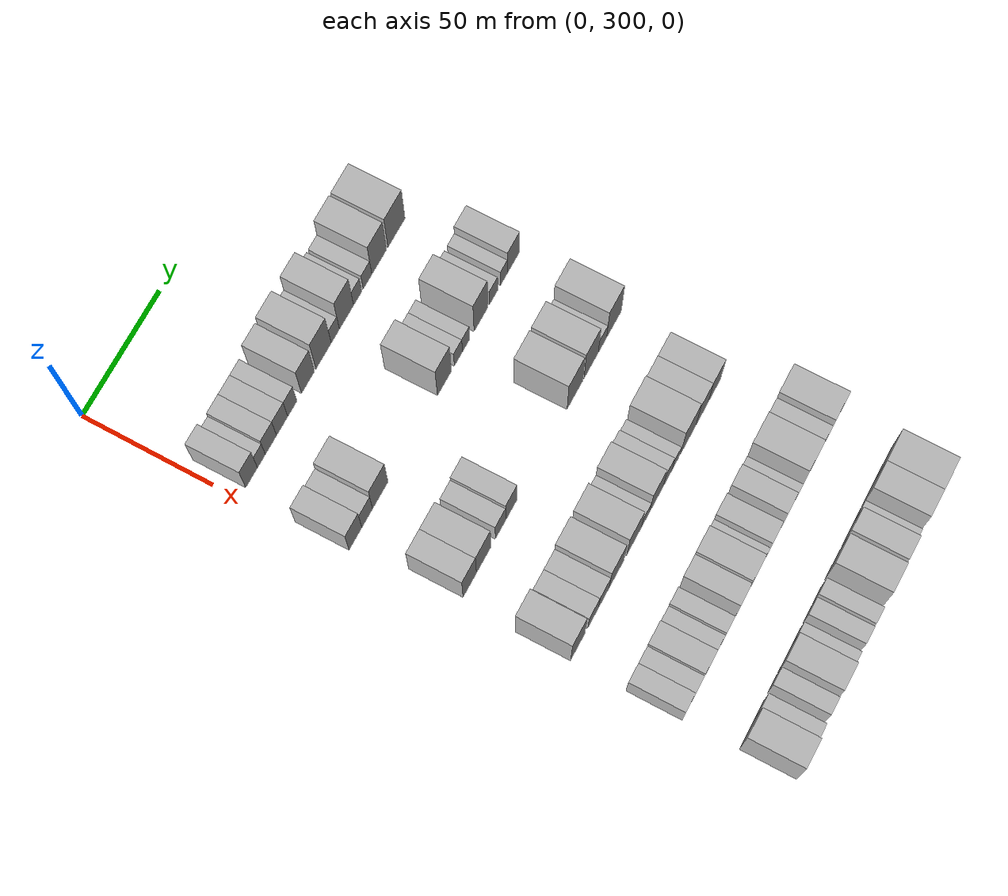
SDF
<sdf version="1.6">
 <world name="default">
  <model name="building_105">
   <static>1</static>
   <pose>50.0000 307.8893 0 0.000000 0.000000 0.000000</pose>
   <link name="link">
    <pose>0 0 9.00 0 0 0</pose>
    <collision name="collision"><geometry><box><size>20.0000 7.6300 18.0000</size></box></geometry></collision>
    <visual name="visual">
     <cast_shadows>0</cast_shadows>
     <geometry><box><size>20.0000 7.6300 18.0000</size></box></geometry>
     <material>
      <script>
       <uri>model://HANNAS_wall/materials/scripts</uri>
       <uri>model://HANNAS_wall/materials/textures</uri>
       <name>vrc/HANNAS_wall</name>
      </script>
     </material>
    </visual>
   </link>
  </model>
  <model name="building_106">
   <static>1</static>
   <pose>50.0000 314.2832 0 0.000000 0.000000 0.000000</pose>
   <link name="link">
    <pose>0 0 6.00 0 0 0</pose>
    <collision name="collision"><geometry><box><size>20.0000 5.1579 12.0000</size></box></geometry></collision>
    <visual name="visual">
     <cast_shadows>0</cast_shadows>
     <geometry><box><size>20.0000 5.1579 12.0000</size></box></geometry>
     <material>
      <script>
       <uri>model://HANNAS_wall/materials/scripts</uri>
       <uri>model://HANNAS_wall/materials/textures</uri>
       <name>vrc/HANNAS_wall</name>
      </script>
     </material>
    </visual>
   </link>
  </model>
  <model name="building_107">
   <static>1</static>
   <pose>50.0000 320.5530 0 0.000000 0.000000 0.000000</pose>
   <link name="link">
    <pose>0 0 7.50 0 0 0</pose>
    <collision name="collision"><geometry><box><size>20.0000 7.3818 15.0000</size></box></geometry></collision>
    <visual name="visual">
     <cast_shadows>0</cast_shadows>
     <geometry><box><size>20.0000 7.3818 15.0000</size></box></geometry>
     <material>
      <script>
       <uri>model://HANNAS_wall/materials/scripts</uri>
       <uri>model://HANNAS_wall/materials/textures</uri>
       <name>vrc/HANNAS_wall</name>
      </script>
     </material>
    </visual>
   </link>
  </model>
  <model name="building_108">
   <static>1</static>
   <pose>50.0000 327.9506 0 0.000000 0.000000 0.000000</pose>
   <link name="link">
    <pose>0 0 7.50 0 0 0</pose>
    <collision name="collision"><geometry><box><size>20.0000 7.4133 15.0000</size></box></geometry></collision>
    <visual name="visual">
     <cast_shadows>0</cast_shadows>
     <geometry><box><size>20.0000 7.4133 15.0000</size></box></geometry>
     <material>
      <script>
       <uri>model://HANNAS_wall/materials/scripts</uri>
       <uri>model://HANNAS_wall/materials/textures</uri>
       <name>vrc/HANNAS_wall</name>
      </script>
     </material>
    </visual>
   </link>
  </model>
  <model name="building_109">
   <static>1</static>
   <pose>50.0000 334.7088 0 0.000000 0.000000 0.000000</pose>
   <link name="link">
    <pose>0 0 7.50 0 0 0</pose>
    <collision name="collision"><geometry><box><size>20.0000 6.1033 15.0000</size></box></geometry></collision>
    <visual name="visual">
     <cast_shadows>0</cast_shadows>
     <geometry><box><size>20.0000 6.1033 15.0000</size></box></geometry>
     <material>
      <script>
       <uri>model://HANNAS_wall/materials/scripts</uri>
       <uri>model://HANNAS_wall/materials/textures</uri>
       <name>vrc/HANNAS_wall</name>
      </script>
     </material>
    </visual>
   </link>
  </model>
  <model name="building_110">
   <static>1</static>
   <pose>50.0000 345.0835 0 0.000000 0.000000 0.000000</pose>
   <link name="link">
    <pose>0 0 10.50 0 0 0</pose>
    <collision name="collision"><geometry><box><size>20.0000 8.6460 21.0000</size></box></geometry></collision>
    <visual name="visual">
     <cast_shadows>0</cast_shadows>
     <geometry><box><size>20.0000 8.6460 21.0000</size></box></geometry>
     <material>
      <script>
       <uri>model://HANNAS_wall/materials/scripts</uri>
       <uri>model://HANNAS_wall/materials/textures</uri>
       <name>vrc/HANNAS_wall</name>
      </script>
     </material>
    </visual>
   </link>
  </model>
  <model name="building_111">
   <static>1</static>
   <pose>50.0000 355.5440 0 0.000000 0.000000 0.000000</pose>
   <link name="link">
    <pose>0 0 12.00 0 0 0</pose>
    <collision name="collision"><geometry><box><size>20.0000 10.2752 24.0000</size></box></geometry></collision>
    <visual name="visual">
     <cast_shadows>0</cast_shadows>
     <geometry><box><size>20.0000 10.2752 24.0000</size></box></geometry>
     <material>
      <script>
       <uri>model://HANNAS_wall/materials/scripts</uri>
       <uri>model://HANNAS_wall/materials/textures</uri>
       <name>vrc/HANNAS_wall</name>
      </script>
     </material>
    </visual>
   </link>
  </model>
  <model name="building_112">
   <static>1</static>
   <pose>50.0000 363.4793 0 0.000000 0.000000 0.000000</pose>
   <link name="link">
    <pose>0 0 6.00 0 0 0</pose>
    <collision name="collision"><geometry><box><size>20.0000 5.5954 12.0000</size></box></geometry></collision>
    <visual name="visual">
     <cast_shadows>0</cast_shadows>
     <geometry><box><size>20.0000 5.5954 12.0000</size></box></geometry>
     <material>
      <script>
       <uri>model://HANNAS_wall/materials/scripts</uri>
       <uri>model://HANNAS_wall/materials/textures</uri>
       <name>vrc/HANNAS_wall</name>
      </script>
     </material>
    </visual>
   </link>
  </model>
  <model name="building_113">
   <static>1</static>
   <pose>50.0000 371.0876 0 0.000000 0.000000 0.000000</pose>
   <link name="link">
    <pose>0 0 12.00 0 0 0</pose>
    <collision name="collision"><geometry><box><size>20.0000 9.6212 24.0000</size></box></geometry></collision>
    <visual name="visual">
     <cast_shadows>0</cast_shadows>
     <geometry><box><size>20.0000 9.6212 24.0000</size></box></geometry>
     <material>
      <script>
       <uri>model://HANNAS_wall/materials/scripts</uri>
       <uri>model://HANNAS_wall/materials/textures</uri>
       <name>vrc/HANNAS_wall</name>
      </script>
     </material>
    </visual>
   </link>
  </model>
  <model name="building_114">
   <static>1</static>
   <pose>50.0000 378.6718 0 0.000000 0.000000 0.000000</pose>
   <link name="link">
    <pose>0 0 6.00 0 0 0</pose>
    <collision name="collision"><geometry><box><size>20.0000 5.5472 12.0000</size></box></geometry></collision>
    <visual name="visual">
     <cast_shadows>0</cast_shadows>
     <geometry><box><size>20.0000 5.5472 12.0000</size></box></geometry>
     <material>
      <script>
       <uri>model://HANNAS_wall/materials/scripts</uri>
       <uri>model://HANNAS_wall/materials/textures</uri>
       <name>vrc/HANNAS_wall</name>
      </script>
     </material>
    </visual>
   </link>
  </model>
  <model name="building_115">
   <static>1</static>
   <pose>50.0000 385.4265 0 0.000000 0.000000 0.000000</pose>
   <link name="link">
    <pose>0 0 6.00 0 0 0</pose>
    <collision name="collision"><geometry><box><size>20.0000 5.9622 12.0000</size></box></geometry></collision>
    <visual name="visual">
     <cast_shadows>0</cast_shadows>
     <geometry><box><size>20.0000 5.9622 12.0000</size></box></geometry>
     <material>
      <script>
       <uri>model://HANNAS_wall/materials/scripts</uri>
       <uri>model://HANNAS_wall/materials/textures</uri>
       <name>vrc/HANNAS_wall</name>
      </script>
     </material>
    </visual>
   </link>
  </model>
  <model name="building_116">
   <static>1</static>
   <pose>50.0000 393.4653 0 0.000000 0.000000 0.000000</pose>
   <link name="link">
    <pose>0 0 12.00 0 0 0</pose>
    <collision name="collision"><geometry><box><size>20.0000 10.1153 24.0000</size></box></geometry></collision>
    <visual name="visual">
     <cast_shadows>0</cast_shadows>
     <geometry><box><size>20.0000 10.1153 24.0000</size></box></geometry>
     <material>
      <script>
       <uri>model://HANNAS_wall/materials/scripts</uri>
       <uri>model://HANNAS_wall/materials/textures</uri>
       <name>vrc/HANNAS_wall</name>
      </script>
     </material>
    </visual>
   </link>
  </model>
  <model name="building_117">
   <static>1</static>
   <pose>50.0000 405.4748 0 0.000000 0.000000 0.000000</pose>
   <link name="link">
    <pose>0 0 12.00 0 0 0</pose>
    <collision name="collision"><geometry><box><size>20.0000 11.9037 24.0000</size></box></geometry></collision>
    <visual name="visual">
     <cast_shadows>0</cast_shadows>
     <geometry><box><size>20.0000 11.9037 24.0000</size></box></geometry>
     <material>
      <script>
       <uri>model://HANNAS_wall/materials/scripts</uri>
       <uri>model://HANNAS_wall/materials/textures</uri>
       <name>vrc/HANNAS_wall</name>
      </script>
     </material>
    </visual>
   </link>
  </model>
  <model name="building_246">
   <static>1</static>
   <pose>90.0000 305.9018 0 0.000000 0.000000 0.000000</pose>
   <link name="link">
    <pose>0 0 9.00 0 0 0</pose>
    <collision name="collision"><geometry><box><size>20.0000 8.4711 18.0000</size></box></geometry></collision>
    <visual name="visual">
     <cast_shadows>0</cast_shadows>
     <geometry><box><size>20.0000 8.4711 18.0000</size></box></geometry>
     <material>
      <script>
       <uri>model://HANNAS_wall/materials/scripts</uri>
       <uri>model://HANNAS_wall/materials/textures</uri>
       <name>vrc/HANNAS_wall</name>
      </script>
     </material>
    </visual>
   </link>
  </model>
  <model name="building_247">
   <static>1</static>
   <pose>90.0000 313.7068 0 0.000000 0.000000 0.000000</pose>
   <link name="link">
    <pose>0 0 7.50 0 0 0</pose>
    <collision name="collision"><geometry><box><size>20.0000 7.1389 15.0000</size></box></geometry></collision>
    <visual name="visual">
     <cast_shadows>0</cast_shadows>
     <geometry><box><size>20.0000 7.1389 15.0000</size></box></geometry>
     <material>
      <script>
       <uri>model://HANNAS_wall/materials/scripts</uri>
       <uri>model://HANNAS_wall/materials/textures</uri>
       <name>vrc/HANNAS_wall</name>
      </script>
     </material>
    </visual>
   </link>
  </model>
  <model name="building_248">
   <static>1</static>
   <pose>90.0000 322.4548 0 0.000000 0.000000 0.000000</pose>
   <link name="link">
    <pose>0 0 10.50 0 0 0</pose>
    <collision name="collision"><geometry><box><size>20.0000 10.3570 21.0000</size></box></geometry></collision>
    <visual name="visual">
     <cast_shadows>0</cast_shadows>
     <geometry><box><size>20.0000 10.3570 21.0000</size></box></geometry>
     <material>
      <script>
       <uri>model://HANNAS_wall/materials/scripts</uri>
       <uri>model://HANNAS_wall/materials/textures</uri>
       <name>vrc/HANNAS_wall</name>
      </script>
     </material>
    </visual>
   </link>
  </model>
  <model name="building_249">
   <static>1</static>
   <pose>90.0000 366.1101 0 0.000000 0.000000 0.000000</pose>
   <link name="link">
    <pose>0 0 12.00 0 0 0</pose>
    <collision name="collision"><geometry><box><size>20.0000 9.6512 24.0000</size></box></geometry></collision>
    <visual name="visual">
     <cast_shadows>0</cast_shadows>
     <geometry><box><size>20.0000 9.6512 24.0000</size></box></geometry>
     <material>
      <script>
       <uri>model://HANNAS_wall/materials/scripts</uri>
       <uri>model://HANNAS_wall/materials/textures</uri>
       <name>vrc/HANNAS_wall</name>
      </script>
     </material>
    </visual>
   </link>
  </model>
  <model name="building_250">
   <static>1</static>
   <pose>90.0000 375.7720 0 0.000000 0.000000 0.000000</pose>
   <link name="link">
    <pose>0 0 6.00 0 0 0</pose>
    <collision name="collision"><geometry><box><size>20.0000 5.6725 12.0000</size></box></geometry></collision>
    <visual name="visual">
     <cast_shadows>0</cast_shadows>
     <geometry><box><size>20.0000 5.6725 12.0000</size></box></geometry>
     <material>
      <script>
       <uri>model://HANNAS_wall/materials/scripts</uri>
       <uri>model://HANNAS_wall/materials/textures</uri>
       <name>vrc/HANNAS_wall</name>
      </script>
     </material>
    </visual>
   </link>
  </model>
  <model name="building_251">
   <static>1</static>
   <pose>90.0000 381.1638 0 0.000000 0.000000 0.000000</pose>
   <link name="link">
    <pose>0 0 6.00 0 0 0</pose>
    <collision name="collision"><geometry><box><size>20.0000 5.1111 12.0000</size></box></geometry></collision>
    <visual name="visual">
     <cast_shadows>0</cast_shadows>
     <geometry><box><size>20.0000 5.1111 12.0000</size></box></geometry>
     <material>
      <script>
       <uri>model://HANNAS_wall/materials/scripts</uri>
       <uri>model://HANNAS_wall/materials/textures</uri>
       <name>vrc/HANNAS_wall</name>
      </script>
     </material>
    </visual>
   </link>
  </model>
  <model name="building_252">
   <static>1</static>
   <pose>90.0000 391.6265 0 0.000000 0.000000 0.000000</pose>
   <link name="link">
    <pose>0 0 12.00 0 0 0</pose>
    <collision name="collision"><geometry><box><size>20.0000 9.8144 24.0000</size></box></geometry></collision>
    <visual name="visual">
     <cast_shadows>0</cast_shadows>
     <geometry><box><size>20.0000 9.8144 24.0000</size></box></geometry>
     <material>
      <script>
       <uri>model://HANNAS_wall/materials/scripts</uri>
       <uri>model://HANNAS_wall/materials/textures</uri>
       <name>vrc/HANNAS_wall</name>
      </script>
     </material>
    </visual>
   </link>
  </model>
  <model name="building_253">
   <static>1</static>
   <pose>90.0000 400.4798 0 0.000000 0.000000 0.000000</pose>
   <link name="link">
    <pose>0 0 6.00 0 0 0</pose>
    <collision name="collision"><geometry><box><size>20.0000 5.8921 12.0000</size></box></geometry></collision>
    <visual name="visual">
     <cast_shadows>0</cast_shadows>
     <geometry><box><size>20.0000 5.8921 12.0000</size></box></geometry>
     <material>
      <script>
       <uri>model://HANNAS_wall/materials/scripts</uri>
       <uri>model://HANNAS_wall/materials/textures</uri>
       <name>vrc/HANNAS_wall</name>
      </script>
     </material>
    </visual>
   </link>
  </model>
  <model name="building_254">
   <static>1</static>
   <pose>90.0000 407.8753 0 0.000000 0.000000 0.000000</pose>
   <link name="link">
    <pose>0 0 6.00 0 0 0</pose>
    <collision name="collision"><geometry><box><size>20.0000 4.8989 12.0000</size></box></geometry></collision>
    <visual name="visual">
     <cast_shadows>0</cast_shadows>
     <geometry><box><size>20.0000 4.8989 12.0000</size></box></geometry>
     <material>
      <script>
       <uri>model://HANNAS_wall/materials/scripts</uri>
       <uri>model://HANNAS_wall/materials/textures</uri>
       <name>vrc/HANNAS_wall</name>
      </script>
     </material>
    </visual>
   </link>
  </model>
  <model name="building_255">
   <static>1</static>
   <pose>90.0000 414.6044 0 0.000000 0.000000 0.000000</pose>
   <link name="link">
    <pose>0 0 9.00 0 0 0</pose>
    <collision name="collision"><geometry><box><size>20.0000 8.5593 18.0000</size></box></geometry></collision>
    <visual name="visual">
     <cast_shadows>0</cast_shadows>
     <geometry><box><size>20.0000 8.5593 18.0000</size></box></geometry>
     <material>
      <script>
       <uri>model://HANNAS_wall/materials/scripts</uri>
       <uri>model://HANNAS_wall/materials/textures</uri>
       <name>vrc/HANNAS_wall</name>
      </script>
     </material>
    </visual>
   </link>
  </model>
  <model name="building_385">
   <static>1</static>
   <pose>130.0000 309.8261 0 0.000000 0.000000 0.000000</pose>
   <link name="link">
    <pose>0 0 10.50 0 0 0</pose>
    <collision name="collision"><geometry><box><size>20.0000 8.9828 21.0000</size></box></geometry></collision>
    <visual name="visual">
     <cast_shadows>0</cast_shadows>
     <geometry><box><size>20.0000 8.9828 21.0000</size></box></geometry>
     <material>
      <script>
       <uri>model://HANNAS_wall/materials/scripts</uri>
       <uri>model://HANNAS_wall/materials/textures</uri>
       <name>vrc/HANNAS_wall</name>
      </script>
     </material>
    </visual>
   </link>
  </model>
  <model name="building_386">
   <static>1</static>
   <pose>130.0000 319.2713 0 0.000000 0.000000 0.000000</pose>
   <link name="link">
    <pose>0 0 10.50 0 0 0</pose>
    <collision name="collision"><geometry><box><size>20.0000 9.9076 21.0000</size></box></geometry></collision>
    <visual name="visual">
     <cast_shadows>0</cast_shadows>
     <geometry><box><size>20.0000 9.9076 21.0000</size></box></geometry>
     <material>
      <script>
       <uri>model://HANNAS_wall/materials/scripts</uri>
       <uri>model://HANNAS_wall/materials/textures</uri>
       <name>vrc/HANNAS_wall</name>
      </script>
     </material>
    </visual>
   </link>
  </model>
  <model name="building_387">
   <static>1</static>
   <pose>130.0000 330.7559 0 0.000000 0.000000 0.000000</pose>
   <link name="link">
    <pose>0 0 7.50 0 0 0</pose>
    <collision name="collision"><geometry><box><size>20.0000 7.0617 15.0000</size></box></geometry></collision>
    <visual name="visual">
     <cast_shadows>0</cast_shadows>
     <geometry><box><size>20.0000 7.0617 15.0000</size></box></geometry>
     <material>
      <script>
       <uri>model://HANNAS_wall/materials/scripts</uri>
       <uri>model://HANNAS_wall/materials/textures</uri>
       <name>vrc/HANNAS_wall</name>
      </script>
     </material>
    </visual>
   </link>
  </model>
  <model name="building_388">
   <static>1</static>
   <pose>130.0000 338.2179 0 0.000000 0.000000 0.000000</pose>
   <link name="link">
    <pose>0 0 9.00 0 0 0</pose>
    <collision name="collision"><geometry><box><size>20.0000 7.8623 18.0000</size></box></geometry></collision>
    <visual name="visual">
     <cast_shadows>0</cast_shadows>
     <geometry><box><size>20.0000 7.8623 18.0000</size></box></geometry>
     <material>
      <script>
       <uri>model://HANNAS_wall/materials/scripts</uri>
       <uri>model://HANNAS_wall/materials/textures</uri>
       <name>vrc/HANNAS_wall</name>
      </script>
     </material>
    </visual>
   </link>
  </model>
  <model name="building_389">
   <static>1</static>
   <pose>130.0000 382.6877 0 0.000000 0.000000 0.000000</pose>
   <link name="link">
    <pose>0 0 12.00 0 0 0</pose>
    <collision name="collision"><geometry><box><size>20.0000 11.0258 24.0000</size></box></geometry></collision>
    <visual name="visual">
     <cast_shadows>0</cast_shadows>
     <geometry><box><size>20.0000 11.0258 24.0000</size></box></geometry>
     <material>
      <script>
       <uri>model://HANNAS_wall/materials/scripts</uri>
       <uri>model://HANNAS_wall/materials/textures</uri>
       <name>vrc/HANNAS_wall</name>
      </script>
     </material>
    </visual>
   </link>
  </model>
  <model name="building_390">
   <static>1</static>
   <pose>130.0000 394.3257 0 0.000000 0.000000 0.000000</pose>
   <link name="link">
    <pose>0 0 12.00 0 0 0</pose>
    <collision name="collision"><geometry><box><size>20.0000 10.2501 24.0000</size></box></geometry></collision>
    <visual name="visual">
     <cast_shadows>0</cast_shadows>
     <geometry><box><size>20.0000 10.2501 24.0000</size></box></geometry>
     <material>
      <script>
       <uri>model://HANNAS_wall/materials/scripts</uri>
       <uri>model://HANNAS_wall/materials/textures</uri>
       <name>vrc/HANNAS_wall</name>
      </script>
     </material>
    </visual>
   </link>
  </model>
  <model name="building_391">
   <static>1</static>
   <pose>130.0000 402.4447 0 0.000000 0.000000 0.000000</pose>
   <link name="link">
    <pose>0 0 6.00 0 0 0</pose>
    <collision name="collision"><geometry><box><size>20.0000 5.9880 12.0000</size></box></geometry></collision>
    <visual name="visual">
     <cast_shadows>0</cast_shadows>
     <geometry><box><size>20.0000 5.9880 12.0000</size></box></geometry>
     <material>
      <script>
       <uri>model://HANNAS_wall/materials/scripts</uri>
       <uri>model://HANNAS_wall/materials/textures</uri>
       <name>vrc/HANNAS_wall</name>
      </script>
     </material>
    </visual>
   </link>
  </model>
  <model name="building_392">
   <static>1</static>
   <pose>130.0000 410.7987 0 0.000000 0.000000 0.000000</pose>
   <link name="link">
    <pose>0 0 12.00 0 0 0</pose>
    <collision name="collision"><geometry><box><size>20.0000 10.7201 24.0000</size></box></geometry></collision>
    <visual name="visual">
     <cast_shadows>0</cast_shadows>
     <geometry><box><size>20.0000 10.7201 24.0000</size></box></geometry>
     <material>
      <script>
       <uri>model://HANNAS_wall/materials/scripts</uri>
       <uri>model://HANNAS_wall/materials/textures</uri>
       <name>vrc/HANNAS_wall</name>
      </script>
     </material>
    </visual>
   </link>
  </model>
  <model name="building_521">
   <static>1</static>
   <pose>170.0000 308.2360 0 0.000000 0.000000 0.000000</pose>
   <link name="link">
    <pose>0 0 12.00 0 0 0</pose>
    <collision name="collision"><geometry><box><size>20.0000 9.8333 24.0000</size></box></geometry></collision>
    <visual name="visual">
     <cast_shadows>0</cast_shadows>
     <geometry><box><size>20.0000 9.8333 24.0000</size></box></geometry>
     <material>
      <script>
       <uri>model://HANNAS_wall/materials/scripts</uri>
       <uri>model://HANNAS_wall/materials/textures</uri>
       <name>vrc/HANNAS_wall</name>
      </script>
     </material>
    </visual>
   </link>
  </model>
  <model name="building_522">
   <static>1</static>
   <pose>170.0000 318.8440 0 0.000000 0.000000 0.000000</pose>
   <link name="link">
    <pose>0 0 7.50 0 0 0</pose>
    <collision name="collision"><geometry><box><size>20.0000 7.3826 15.0000</size></box></geometry></collision>
    <visual name="visual">
     <cast_shadows>0</cast_shadows>
     <geometry><box><size>20.0000 7.3826 15.0000</size></box></geometry>
     <material>
      <script>
       <uri>model://HANNAS_wall/materials/scripts</uri>
       <uri>model://HANNAS_wall/materials/textures</uri>
       <name>vrc/HANNAS_wall</name>
      </script>
     </material>
    </visual>
   </link>
  </model>
  <model name="building_523">
   <static>1</static>
   <pose>170.0000 326.2537 0 0.000000 0.000000 0.000000</pose>
   <link name="link">
    <pose>0 0 7.50 0 0 0</pose>
    <collision name="collision"><geometry><box><size>20.0000 7.4368 15.0000</size></box></geometry></collision>
    <visual name="visual">
     <cast_shadows>0</cast_shadows>
     <geometry><box><size>20.0000 7.4368 15.0000</size></box></geometry>
     <material>
      <script>
       <uri>model://HANNAS_wall/materials/scripts</uri>
       <uri>model://HANNAS_wall/materials/textures</uri>
       <name>vrc/HANNAS_wall</name>
      </script>
     </material>
    </visual>
   </link>
  </model>
  <model name="building_524">
   <static>1</static>
   <pose>170.0000 335.1514 0 0.000000 0.000000 0.000000</pose>
   <link name="link">
    <pose>0 0 10.50 0 0 0</pose>
    <collision name="collision"><geometry><box><size>20.0000 10.3588 21.0000</size></box></geometry></collision>
    <visual name="visual">
     <cast_shadows>0</cast_shadows>
     <geometry><box><size>20.0000 10.3588 21.0000</size></box></geometry>
     <material>
      <script>
       <uri>model://HANNAS_wall/materials/scripts</uri>
       <uri>model://HANNAS_wall/materials/textures</uri>
       <name>vrc/HANNAS_wall</name>
      </script>
     </material>
    </visual>
   </link>
  </model>
  <model name="building_525">
   <static>1</static>
   <pose>170.0000 347.4899 0 0.000000 0.000000 0.000000</pose>
   <link name="link">
    <pose>0 0 10.50 0 0 0</pose>
    <collision name="collision"><geometry><box><size>20.0000 10.3181 21.0000</size></box></geometry></collision>
    <visual name="visual">
     <cast_shadows>0</cast_shadows>
     <geometry><box><size>20.0000 10.3181 21.0000</size></box></geometry>
     <material>
      <script>
       <uri>model://HANNAS_wall/materials/scripts</uri>
       <uri>model://HANNAS_wall/materials/textures</uri>
       <name>vrc/HANNAS_wall</name>
      </script>
     </material>
    </visual>
   </link>
  </model>
  <model name="building_526">
   <static>1</static>
   <pose>170.0000 355.5844 0 0.000000 0.000000 0.000000</pose>
   <link name="link">
    <pose>0 0 6.00 0 0 0</pose>
    <collision name="collision"><geometry><box><size>20.0000 5.8709 12.0000</size></box></geometry></collision>
    <visual name="visual">
     <cast_shadows>0</cast_shadows>
     <geometry><box><size>20.0000 5.8709 12.0000</size></box></geometry>
     <material>
      <script>
       <uri>model://HANNAS_wall/materials/scripts</uri>
       <uri>model://HANNAS_wall/materials/textures</uri>
       <name>vrc/HANNAS_wall</name>
      </script>
     </material>
    </visual>
   </link>
  </model>
  <model name="building_527">
   <static>1</static>
   <pose>170.0000 363.3868 0 0.000000 0.000000 0.000000</pose>
   <link name="link">
    <pose>0 0 10.50 0 0 0</pose>
    <collision name="collision"><geometry><box><size>20.0000 9.7339 21.0000</size></box></geometry></collision>
    <visual name="visual">
     <cast_shadows>0</cast_shadows>
     <geometry><box><size>20.0000 9.7339 21.0000</size></box></geometry>
     <material>
      <script>
       <uri>model://HANNAS_wall/materials/scripts</uri>
       <uri>model://HANNAS_wall/materials/textures</uri>
       <name>vrc/HANNAS_wall</name>
      </script>
     </material>
    </visual>
   </link>
  </model>
  <model name="building_528">
   <static>1</static>
   <pose>170.0000 371.4610 0 0.000000 0.000000 0.000000</pose>
   <link name="link">
    <pose>0 0 7.50 0 0 0</pose>
    <collision name="collision"><geometry><box><size>20.0000 6.4145 15.0000</size></box></geometry></collision>
    <visual name="visual">
     <cast_shadows>0</cast_shadows>
     <geometry><box><size>20.0000 6.4145 15.0000</size></box></geometry>
     <material>
      <script>
       <uri>model://HANNAS_wall/materials/scripts</uri>
       <uri>model://HANNAS_wall/materials/textures</uri>
       <name>vrc/HANNAS_wall</name>
      </script>
     </material>
    </visual>
   </link>
  </model>
  <model name="building_529">
   <static>1</static>
   <pose>170.0000 377.2686 0 0.000000 0.000000 0.000000</pose>
   <link name="link">
    <pose>0 0 6.00 0 0 0</pose>
    <collision name="collision"><geometry><box><size>20.0000 5.2006 12.0000</size></box></geometry></collision>
    <visual name="visual">
     <cast_shadows>0</cast_shadows>
     <geometry><box><size>20.0000 5.2006 12.0000</size></box></geometry>
     <material>
      <script>
       <uri>model://HANNAS_wall/materials/scripts</uri>
       <uri>model://HANNAS_wall/materials/textures</uri>
       <name>vrc/HANNAS_wall</name>
      </script>
     </material>
    </visual>
   </link>
  </model>
  <model name="building_530">
   <static>1</static>
   <pose>170.0000 386.4505 0 0.000000 0.000000 0.000000</pose>
   <link name="link">
    <pose>0 0 12.00 0 0 0</pose>
    <collision name="collision"><geometry><box><size>20.0000 11.1632 24.0000</size></box></geometry></collision>
    <visual name="visual">
     <cast_shadows>0</cast_shadows>
     <geometry><box><size>20.0000 11.1632 24.0000</size></box></geometry>
     <material>
      <script>
       <uri>model://HANNAS_wall/materials/scripts</uri>
       <uri>model://HANNAS_wall/materials/textures</uri>
       <name>vrc/HANNAS_wall</name>
      </script>
     </material>
    </visual>
   </link>
  </model>
  <model name="building_531">
   <static>1</static>
   <pose>170.0000 396.5089 0 0.000000 0.000000 0.000000</pose>
   <link name="link">
    <pose>0 0 10.50 0 0 0</pose>
    <collision name="collision"><geometry><box><size>20.0000 8.9536 21.0000</size></box></geometry></collision>
    <visual name="visual">
     <cast_shadows>0</cast_shadows>
     <geometry><box><size>20.0000 8.9536 21.0000</size></box></geometry>
     <material>
      <script>
       <uri>model://HANNAS_wall/materials/scripts</uri>
       <uri>model://HANNAS_wall/materials/textures</uri>
       <name>vrc/HANNAS_wall</name>
      </script>
     </material>
    </visual>
   </link>
  </model>
  <model name="building_532">
   <static>1</static>
   <pose>170.0000 405.5408 0 0.000000 0.000000 0.000000</pose>
   <link name="link">
    <pose>0 0 10.50 0 0 0</pose>
    <collision name="collision"><geometry><box><size>20.0000 9.1102 21.0000</size></box></geometry></collision>
    <visual name="visual">
     <cast_shadows>0</cast_shadows>
     <geometry><box><size>20.0000 9.1102 21.0000</size></box></geometry>
     <material>
      <script>
       <uri>model://HANNAS_wall/materials/scripts</uri>
       <uri>model://HANNAS_wall/materials/textures</uri>
       <name>vrc/HANNAS_wall</name>
      </script>
     </material>
    </visual>
   </link>
  </model>
  <model name="building_652">
   <static>1</static>
   <pose>210.0000 306.5367 0 0.000000 0.000000 0.000000</pose>
   <link name="link">
    <pose>0 0 7.50 0 0 0</pose>
    <collision name="collision"><geometry><box><size>20.0000 6.9577 15.0000</size></box></geometry></collision>
    <visual name="visual">
     <cast_shadows>0</cast_shadows>
     <geometry><box><size>20.0000 6.9577 15.0000</size></box></geometry>
     <material>
      <script>
       <uri>model://HANNAS_wall/materials/scripts</uri>
       <uri>model://HANNAS_wall/materials/textures</uri>
       <name>vrc/HANNAS_wall</name>
      </script>
     </material>
    </visual>
   </link>
  </model>
  <model name="building_653">
   <static>1</static>
   <pose>210.0000 313.0647 0 0.000000 0.000000 0.000000</pose>
   <link name="link">
    <pose>0 0 7.50 0 0 0</pose>
    <collision name="collision"><geometry><box><size>20.0000 6.0983 15.0000</size></box></geometry></collision>
    <visual name="visual">
     <cast_shadows>0</cast_shadows>
     <geometry><box><size>20.0000 6.0983 15.0000</size></box></geometry>
     <material>
      <script>
       <uri>model://HANNAS_wall/materials/scripts</uri>
       <uri>model://HANNAS_wall/materials/textures</uri>
       <name>vrc/HANNAS_wall</name>
      </script>
     </material>
    </visual>
   </link>
  </model>
  <model name="building_654">
   <static>1</static>
   <pose>210.0000 320.3987 0 0.000000 0.000000 0.000000</pose>
   <link name="link">
    <pose>0 0 9.00 0 0 0</pose>
    <collision name="collision"><geometry><box><size>20.0000 8.5698 18.0000</size></box></geometry></collision>
    <visual name="visual">
     <cast_shadows>0</cast_shadows>
     <geometry><box><size>20.0000 8.5698 18.0000</size></box></geometry>
     <material>
      <script>
       <uri>model://HANNAS_wall/materials/scripts</uri>
       <uri>model://HANNAS_wall/materials/textures</uri>
       <name>vrc/HANNAS_wall</name>
      </script>
     </material>
    </visual>
   </link>
  </model>
  <model name="building_655">
   <static>1</static>
   <pose>210.0000 328.5066 0 0.000000 0.000000 0.000000</pose>
   <link name="link">
    <pose>0 0 6.00 0 0 0</pose>
    <collision name="collision"><geometry><box><size>20.0000 5.6458 12.0000</size></box></geometry></collision>
    <visual name="visual">
     <cast_shadows>0</cast_shadows>
     <geometry><box><size>20.0000 5.6458 12.0000</size></box></geometry>
     <material>
      <script>
       <uri>model://HANNAS_wall/materials/scripts</uri>
       <uri>model://HANNAS_wall/materials/textures</uri>
       <name>vrc/HANNAS_wall</name>
      </script>
     </material>
    </visual>
   </link>
  </model>
  <model name="building_656">
   <static>1</static>
   <pose>210.0000 334.4465 0 0.000000 0.000000 0.000000</pose>
   <link name="link">
    <pose>0 0 7.50 0 0 0</pose>
    <collision name="collision"><geometry><box><size>20.0000 6.2340 15.0000</size></box></geometry></collision>
    <visual name="visual">
     <cast_shadows>0</cast_shadows>
     <geometry><box><size>20.0000 6.2340 15.0000</size></box></geometry>
     <material>
      <script>
       <uri>model://HANNAS_wall/materials/scripts</uri>
       <uri>model://HANNAS_wall/materials/textures</uri>
       <name>vrc/HANNAS_wall</name>
      </script>
     </material>
    </visual>
   </link>
  </model>
  <model name="building_657">
   <static>1</static>
   <pose>210.0000 344.6491 0 0.000000 0.000000 0.000000</pose>
   <link name="link">
    <pose>0 0 9.00 0 0 0</pose>
    <collision name="collision"><geometry><box><size>20.0000 8.1711 18.0000</size></box></geometry></collision>
    <visual name="visual">
     <cast_shadows>0</cast_shadows>
     <geometry><box><size>20.0000 8.1711 18.0000</size></box></geometry>
     <material>
      <script>
       <uri>model://HANNAS_wall/materials/scripts</uri>
       <uri>model://HANNAS_wall/materials/textures</uri>
       <name>vrc/HANNAS_wall</name>
      </script>
     </material>
    </visual>
   </link>
  </model>
  <model name="building_658">
   <static>1</static>
   <pose>210.0000 353.5778 0 0.000000 0.000000 0.000000</pose>
   <link name="link">
    <pose>0 0 10.50 0 0 0</pose>
    <collision name="collision"><geometry><box><size>20.0000 9.6864 21.0000</size></box></geometry></collision>
    <visual name="visual">
     <cast_shadows>0</cast_shadows>
     <geometry><box><size>20.0000 9.6864 21.0000</size></box></geometry>
     <material>
      <script>
       <uri>model://HANNAS_wall/materials/scripts</uri>
       <uri>model://HANNAS_wall/materials/textures</uri>
       <name>vrc/HANNAS_wall</name>
      </script>
     </material>
    </visual>
   </link>
  </model>
  <model name="building_659">
   <static>1</static>
   <pose>210.0000 360.8576 0 0.000000 0.000000 0.000000</pose>
   <link name="link">
    <pose>0 0 6.00 0 0 0</pose>
    <collision name="collision"><geometry><box><size>20.0000 4.8732 12.0000</size></box></geometry></collision>
    <visual name="visual">
     <cast_shadows>0</cast_shadows>
     <geometry><box><size>20.0000 4.8732 12.0000</size></box></geometry>
     <material>
      <script>
       <uri>model://HANNAS_wall/materials/scripts</uri>
       <uri>model://HANNAS_wall/materials/textures</uri>
       <name>vrc/HANNAS_wall</name>
      </script>
     </material>
    </visual>
   </link>
  </model>
  <model name="building_660">
   <static>1</static>
   <pose>210.0000 367.2860 0 0.000000 0.000000 0.000000</pose>
   <link name="link">
    <pose>0 0 9.00 0 0 0</pose>
    <collision name="collision"><geometry><box><size>20.0000 7.9837 18.0000</size></box></geometry></collision>
    <visual name="visual">
     <cast_shadows>0</cast_shadows>
     <geometry><box><size>20.0000 7.9837 18.0000</size></box></geometry>
     <material>
      <script>
       <uri>model://HANNAS_wall/materials/scripts</uri>
       <uri>model://HANNAS_wall/materials/textures</uri>
       <name>vrc/HANNAS_wall</name>
      </script>
     </material>
    </visual>
   </link>
  </model>
  <model name="building_661">
   <static>1</static>
   <pose>210.0000 378.1957 0 0.000000 0.000000 0.000000</pose>
   <link name="link">
    <pose>0 0 9.00 0 0 0</pose>
    <collision name="collision"><geometry><box><size>20.0000 7.8357 18.0000</size></box></geometry></collision>
    <visual name="visual">
     <cast_shadows>0</cast_shadows>
     <geometry><box><size>20.0000 7.8357 18.0000</size></box></geometry>
     <material>
      <script>
       <uri>model://HANNAS_wall/materials/scripts</uri>
       <uri>model://HANNAS_wall/materials/textures</uri>
       <name>vrc/HANNAS_wall</name>
      </script>
     </material>
    </visual>
   </link>
  </model>
  <model name="building_662">
   <static>1</static>
   <pose>210.0000 384.6248 0 0.000000 0.000000 0.000000</pose>
   <link name="link">
    <pose>0 0 6.00 0 0 0</pose>
    <collision name="collision"><geometry><box><size>20.0000 5.0225 12.0000</size></box></geometry></collision>
    <visual name="visual">
     <cast_shadows>0</cast_shadows>
     <geometry><box><size>20.0000 5.0225 12.0000</size></box></geometry>
     <material>
      <script>
       <uri>model://HANNAS_wall/materials/scripts</uri>
       <uri>model://HANNAS_wall/materials/textures</uri>
       <name>vrc/HANNAS_wall</name>
      </script>
     </material>
    </visual>
   </link>
  </model>
  <model name="building_663">
   <static>1</static>
   <pose>210.0000 393.9958 0 0.000000 0.000000 0.000000</pose>
   <link name="link">
    <pose>0 0 12.00 0 0 0</pose>
    <collision name="collision"><geometry><box><size>20.0000 11.7195 24.0000</size></box></geometry></collision>
    <visual name="visual">
     <cast_shadows>0</cast_shadows>
     <geometry><box><size>20.0000 11.7195 24.0000</size></box></geometry>
     <material>
      <script>
       <uri>model://HANNAS_wall/materials/scripts</uri>
       <uri>model://HANNAS_wall/materials/textures</uri>
       <name>vrc/HANNAS_wall</name>
      </script>
     </material>
    </visual>
   </link>
  </model>
  <model name="building_664">
   <static>1</static>
   <pose>210.0000 403.5396 0 0.000000 0.000000 0.000000</pose>
   <link name="link">
    <pose>0 0 9.00 0 0 0</pose>
    <collision name="collision"><geometry><box><size>20.0000 7.3681 18.0000</size></box></geometry></collision>
    <visual name="visual">
     <cast_shadows>0</cast_shadows>
     <geometry><box><size>20.0000 7.3681 18.0000</size></box></geometry>
     <material>
      <script>
       <uri>model://HANNAS_wall/materials/scripts</uri>
       <uri>model://HANNAS_wall/materials/textures</uri>
       <name>vrc/HANNAS_wall</name>
      </script>
     </material>
    </visual>
   </link>
  </model>
  <model name="building_665">
   <static>1</static>
   <pose>210.0000 412.6574 0 0.000000 0.000000 0.000000</pose>
   <link name="link">
    <pose>0 0 12.00 0 0 0</pose>
    <collision name="collision"><geometry><box><size>20.0000 10.8674 24.0000</size></box></geometry></collision>
    <visual name="visual">
     <cast_shadows>0</cast_shadows>
     <geometry><box><size>20.0000 10.8674 24.0000</size></box></geometry>
     <material>
      <script>
       <uri>model://HANNAS_wall/materials/scripts</uri>
       <uri>model://HANNAS_wall/materials/textures</uri>
       <name>vrc/HANNAS_wall</name>
      </script>
     </material>
    </visual>
   </link>
  </model>
  <model name="building_793">
   <static>1</static>
   <pose>250.0000 308.6417 0 0.000000 0.000000 0.000000</pose>
   <link name="link">
    <pose>0 0 12.00 0 0 0</pose>
    <collision name="collision"><geometry><box><size>20.0000 10.5879 24.0000</size></box></geometry></collision>
    <visual name="visual">
     <cast_shadows>0</cast_shadows>
     <geometry><box><size>20.0000 10.5879 24.0000</size></box></geometry>
     <material>
      <script>
       <uri>model://HANNAS_wall/materials/scripts</uri>
       <uri>model://HANNAS_wall/materials/textures</uri>
       <name>vrc/HANNAS_wall</name>
      </script>
     </material>
    </visual>
   </link>
  </model>
  <model name="building_794">
   <static>1</static>
   <pose>250.0000 317.2749 0 0.000000 0.000000 0.000000</pose>
   <link name="link">
    <pose>0 0 7.50 0 0 0</pose>
    <collision name="collision"><geometry><box><size>20.0000 6.6785 15.0000</size></box></geometry></collision>
    <visual name="visual">
     <cast_shadows>0</cast_shadows>
     <geometry><box><size>20.0000 6.6785 15.0000</size></box></geometry>
     <material>
      <script>
       <uri>model://HANNAS_wall/materials/scripts</uri>
       <uri>model://HANNAS_wall/materials/textures</uri>
       <name>vrc/HANNAS_wall</name>
      </script>
     </material>
    </visual>
   </link>
  </model>
  <model name="building_795">
   <static>1</static>
   <pose>250.0000 326.7941 0 0.000000 0.000000 0.000000</pose>
   <link name="link">
    <pose>0 0 7.50 0 0 0</pose>
    <collision name="collision"><geometry><box><size>20.0000 6.3599 15.0000</size></box></geometry></collision>
    <visual name="visual">
     <cast_shadows>0</cast_shadows>
     <geometry><box><size>20.0000 6.3599 15.0000</size></box></geometry>
     <material>
      <script>
       <uri>model://HANNAS_wall/materials/scripts</uri>
       <uri>model://HANNAS_wall/materials/textures</uri>
       <name>vrc/HANNAS_wall</name>
      </script>
     </material>
    </visual>
   </link>
  </model>
  <model name="building_796">
   <static>1</static>
   <pose>250.0000 335.9797 0 0.000000 0.000000 0.000000</pose>
   <link name="link">
    <pose>0 0 10.50 0 0 0</pose>
    <collision name="collision"><geometry><box><size>20.0000 10.0112 21.0000</size></box></geometry></collision>
    <visual name="visual">
     <cast_shadows>0</cast_shadows>
     <geometry><box><size>20.0000 10.0112 21.0000</size></box></geometry>
     <material>
      <script>
       <uri>model://HANNAS_wall/materials/scripts</uri>
       <uri>model://HANNAS_wall/materials/textures</uri>
       <name>vrc/HANNAS_wall</name>
      </script>
     </material>
    </visual>
   </link>
  </model>
  <model name="building_797">
   <static>1</static>
   <pose>250.0000 343.9499 0 0.000000 0.000000 0.000000</pose>
   <link name="link">
    <pose>0 0 6.00 0 0 0</pose>
    <collision name="collision"><geometry><box><size>20.0000 5.9292 12.0000</size></box></geometry></collision>
    <visual name="visual">
     <cast_shadows>0</cast_shadows>
     <geometry><box><size>20.0000 5.9292 12.0000</size></box></geometry>
     <material>
      <script>
       <uri>model://HANNAS_wall/materials/scripts</uri>
       <uri>model://HANNAS_wall/materials/textures</uri>
       <name>vrc/HANNAS_wall</name>
      </script>
     </material>
    </visual>
   </link>
  </model>
  <model name="building_798">
   <static>1</static>
   <pose>250.0000 352.0643 0 0.000000 0.000000 0.000000</pose>
   <link name="link">
    <pose>0 0 7.50 0 0 0</pose>
    <collision name="collision"><geometry><box><size>20.0000 6.2996 15.0000</size></box></geometry></collision>
    <visual name="visual">
     <cast_shadows>0</cast_shadows>
     <geometry><box><size>20.0000 6.2996 15.0000</size></box></geometry>
     <material>
      <script>
       <uri>model://HANNAS_wall/materials/scripts</uri>
       <uri>model://HANNAS_wall/materials/textures</uri>
       <name>vrc/HANNAS_wall</name>
      </script>
     </material>
    </visual>
   </link>
  </model>
  <model name="building_799">
   <static>1</static>
   <pose>250.0000 359.2242 0 0.000000 0.000000 0.000000</pose>
   <link name="link">
    <pose>0 0 7.50 0 0 0</pose>
    <collision name="collision"><geometry><box><size>20.0000 6.0202 15.0000</size></box></geometry></collision>
    <visual name="visual">
     <cast_shadows>0</cast_shadows>
     <geometry><box><size>20.0000 6.0202 15.0000</size></box></geometry>
     <material>
      <script>
       <uri>model://HANNAS_wall/materials/scripts</uri>
       <uri>model://HANNAS_wall/materials/textures</uri>
       <name>vrc/HANNAS_wall</name>
      </script>
     </material>
    </visual>
   </link>
  </model>
  <model name="building_800">
   <static>1</static>
   <pose>250.0000 370.6131 0 0.000000 0.000000 0.000000</pose>
   <link name="link">
    <pose>0 0 12.00 0 0 0</pose>
    <collision name="collision"><geometry><box><size>20.0000 10.7577 24.0000</size></box></geometry></collision>
    <visual name="visual">
     <cast_shadows>0</cast_shadows>
     <geometry><box><size>20.0000 10.7577 24.0000</size></box></geometry>
     <material>
      <script>
       <uri>model://HANNAS_wall/materials/scripts</uri>
       <uri>model://HANNAS_wall/materials/textures</uri>
       <name>vrc/HANNAS_wall</name>
      </script>
     </material>
    </visual>
   </link>
  </model>
  <model name="building_801">
   <static>1</static>
   <pose>250.0000 382.3272 0 0.000000 0.000000 0.000000</pose>
   <link name="link">
    <pose>0 0 10.50 0 0 0</pose>
    <collision name="collision"><geometry><box><size>20.0000 8.6705 21.0000</size></box></geometry></collision>
    <visual name="visual">
     <cast_shadows>0</cast_shadows>
     <geometry><box><size>20.0000 8.6705 21.0000</size></box></geometry>
     <material>
      <script>
       <uri>model://HANNAS_wall/materials/scripts</uri>
       <uri>model://HANNAS_wall/materials/textures</uri>
       <name>vrc/HANNAS_wall</name>
      </script>
     </material>
    </visual>
   </link>
  </model>
  <model name="building_802">
   <static>1</static>
   <pose>250.0000 389.2208 0 0.000000 0.000000 0.000000</pose>
   <link name="link">
    <pose>0 0 6.00 0 0 0</pose>
    <collision name="collision"><geometry><box><size>20.0000 5.1166 12.0000</size></box></geometry></collision>
    <visual name="visual">
     <cast_shadows>0</cast_shadows>
     <geometry><box><size>20.0000 5.1166 12.0000</size></box></geometry>
     <material>
      <script>
       <uri>model://HANNAS_wall/materials/scripts</uri>
       <uri>model://HANNAS_wall/materials/textures</uri>
       <name>vrc/HANNAS_wall</name>
      </script>
     </material>
    </visual>
   </link>
  </model>
  <model name="building_803">
   <static>1</static>
   <pose>250.0000 397.8222 0 0.000000 0.000000 0.000000</pose>
   <link name="link">
    <pose>0 0 12.00 0 0 0</pose>
    <collision name="collision"><geometry><box><size>20.0000 10.0862 24.0000</size></box></geometry></collision>
    <visual name="visual">
     <cast_shadows>0</cast_shadows>
     <geometry><box><size>20.0000 10.0862 24.0000</size></box></geometry>
     <material>
      <script>
       <uri>model://HANNAS_wall/materials/scripts</uri>
       <uri>model://HANNAS_wall/materials/textures</uri>
       <name>vrc/HANNAS_wall</name>
      </script>
     </material>
    </visual>
   </link>
  </model>
  <model name="building_804">
   <static>1</static>
   <pose>250.0000 408.7869 0 0.000000 0.000000 0.000000</pose>
   <link name="link">
    <pose>0 0 12.00 0 0 0</pose>
    <collision name="collision"><geometry><box><size>20.0000 11.8433 24.0000</size></box></geometry></collision>
    <visual name="visual">
     <cast_shadows>0</cast_shadows>
     <geometry><box><size>20.0000 11.8433 24.0000</size></box></geometry>
     <material>
      <script>
       <uri>model://HANNAS_wall/materials/scripts</uri>
       <uri>model://HANNAS_wall/materials/textures</uri>
       <name>vrc/HANNAS_wall</name>
      </script>
     </material>
    </visual>
   </link>
  </model>
 </world>
</sdf>
